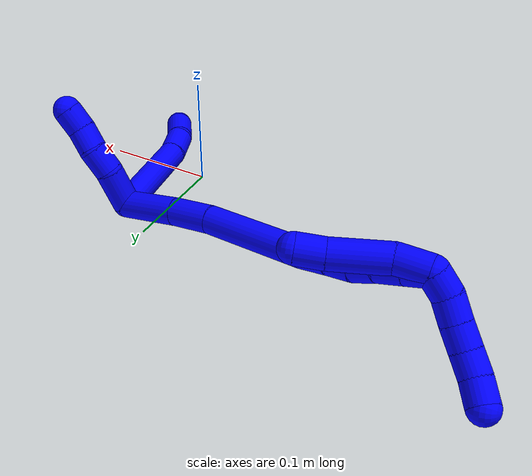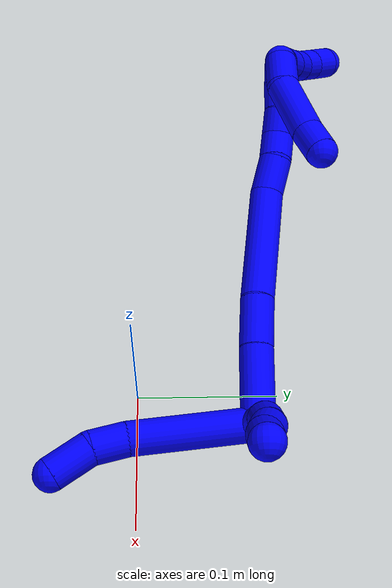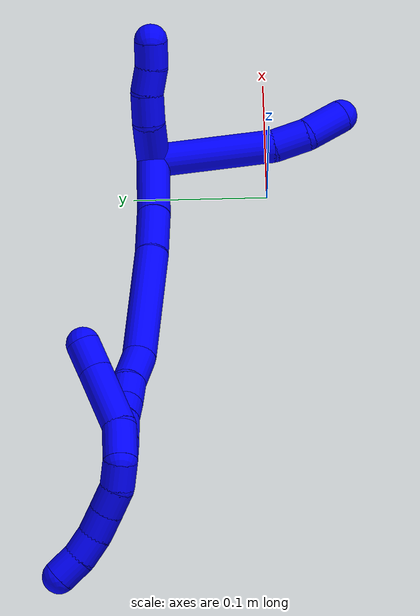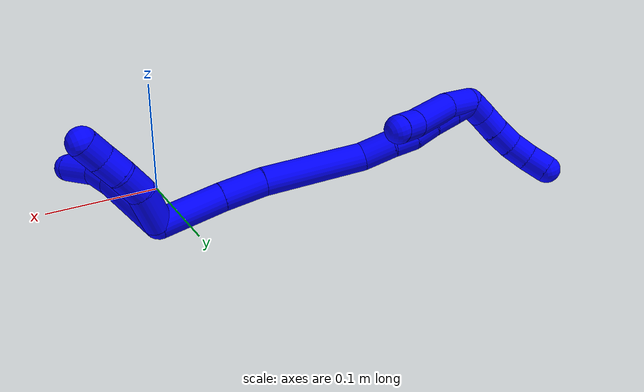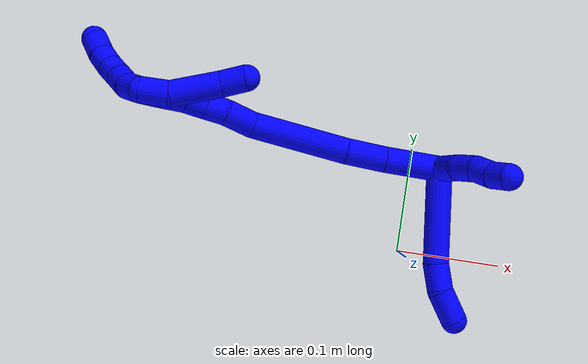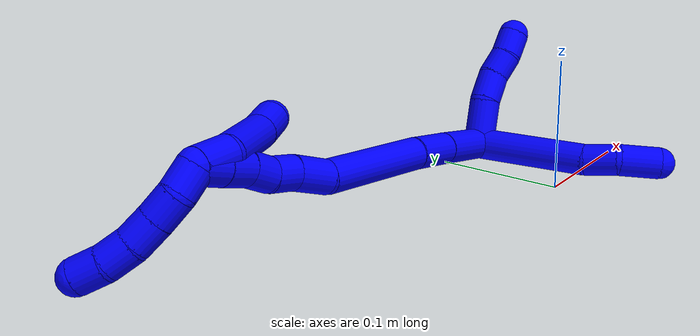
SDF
<sdf version="1.7">
 <world name="default">
  <model name="photoneo_s_sensor">
   <static>1</static>
   <pose>0 0 2 1.57079 1.57079 3.14159</pose>
   <link name="link">
    <inertial><mass>0.1</mass></inertial>
    <sensor name="sensor" type="depth">
     <update_rate>30</update_rate>
     <camera>
      <horizontal_fov>1.22</horizontal_fov>
      <image><width>1920</width><height>1200</height><format>B8G8R8</format></image>
      <clip><near>0.1</near><far>4</far></clip>
      <depth_camera><output>points</output></depth_camera>
     </camera>
     <plugin name="camera_plugin" filename="libgazebo_ros_depth_camera.so">
      <baseline>0.2</baseline>
      <alwaysOn>1</alwaysOn>
      <updateRate>0.0</updateRate>
      <cameraName>camera_ir</cameraName>
      <imageTopicName>/camera/color/image_raw</imageTopicName>
      <cameraInfoTopicName>/camera/color/camera_info</cameraInfoTopicName>
      <depthImageTopicName>/camera/depth/image_raw</depthImageTopicName>
      <depthImageCameraInfoTopicName>/camera/depth/camera_info</depthImageCameraInfoTopicName>
      <pointCloudTopicName>/camera/depth/points</pointCloudTopicName>
      <frameName>fr_optical</frameName>
      <pointCloudCutoff>0.1</pointCloudCutoff>
      <pointCloudCutoffMax>2.0</pointCloudCutoffMax>
      <distortionK1>0</distortionK1>
      <distortionK2>0</distortionK2>
      <distortionK3>0</distortionK3>
      <distortionT1>0</distortionT1>
      <distortionT2>0</distortionT2>
      <CxPrime>0</CxPrime>
      <Cx>0</Cx>
      <Cy>0</Cy>
      <focalLength>0</focalLength>
      <hackBaseline>0</hackBaseline>
     </plugin>
    </sensor>
   </link>
  </model>
  <model name="bin">
   <static>1</static>
   <link name="bottom">
    <collision name="collision-bottom">
     <pose>0 0 -0.01 0 -0 0</pose>
     <geometry><box><size>0.8 0.6 0.02</size></box></geometry>
     <surface>
      <friction><ode><mu>100</mu><mu2>100</mu2></ode></friction>
      <contact><collide_bitmask>65535</collide_bitmask></contact>
     </surface>
    </collision>
   </link>
   <link name="west_wall">
    <collision name="collision-west_wall">
     <pose>-0.41 0 0.1 0 -0 0</pose>
     <geometry><box><size>0.02 0.6 0.2</size></box></geometry>
     <surface>
      <friction><ode><mu>100</mu><mu2>100</mu2></ode></friction>
      <contact><collide_bitmask>65535</collide_bitmask></contact>
     </surface>
    </collision>
   </link>
   <link name="east_wall">
    <collision name="collision-east_wall">
     <pose>0.41 0 0.1 0 -0 0</pose>
     <geometry><box><size>0.02 0.6 0.2</size></box></geometry>
     <surface>
      <friction><ode><mu>100</mu><mu2>100</mu2></ode></friction>
      <contact><collide_bitmask>65535</collide_bitmask></contact>
     </surface>
    </collision>
   </link>
   <link name="south_wall">
    <collision name="collision-south_wall">
     <pose>0 -0.31 0.1 0 -0 0</pose>
     <geometry><box><size>0.8 0.02 0.2</size></box></geometry>
     <surface>
      <friction><ode><mu>100</mu><mu2>100</mu2></ode></friction>
      <contact><collide_bitmask>65535</collide_bitmask></contact>
     </surface>
    </collision>
   </link>
   <link name="north_wall">
    <collision name="collision-north_wall">
     <pose>0 0.31 0.1 0 -0 0</pose>
     <geometry><box><size>0.8 0.02 0.2</size></box></geometry>
     <surface>
      <friction><ode><mu>100</mu><mu2>100</mu2></ode></friction>
      <contact><collide_bitmask>65535</collide_bitmask></contact>
     </surface>
    </collision>
   </link>
  </model>
  <model name="1">
   <static>0</static>
   <link name="1">
    <collision name="collision-cylinder-e_1_2_8">
     <pose>0.026461 -0.037027 -0.004909 1.70261 0.616372 0.696981</pose>
     <geometry><cylinder><radius>0.0125</radius><length>0.091549</length></cylinder></geometry>
     <surface>
      <friction><ode><mu>1.16</mu><mu2>1.16</mu2><slip1>0</slip1><slip2>0</slip2></ode></friction>
      <contact><ode><kp>1e+06</kp><kd>1</kd><max_vel>0</max_vel><min_depth>0.001</min_depth></ode></contact>
     </surface>
    </collision>
    <visual name="visual-cylinder-e_1_2_8">
     <pose>0.026461 -0.037027 -0.004909 1.70261 0.616372 0.696981</pose>
     <geometry><cylinder><radius>0.0125</radius><length>0.091549</length></cylinder></geometry>
     <material><ambient>0 0 1 1</ambient></material>
    </visual>
    <collision name="collision-cylinder-e_2_8_9">
     <pose>0.061632 -0.083363 -0.0134 1.93809 0.717813 1.00001</pose>
     <geometry><cylinder><radius>0.0125</radius><length>0.026485</length></cylinder></geometry>
     <surface>
      <friction><ode><mu>1.16</mu><mu2>1.16</mu2><slip1>0</slip1><slip2>0</slip2></ode></friction>
      <contact><ode><kp>1e+06</kp><kd>1</kd><max_vel>0</max_vel><min_depth>0.001</min_depth></ode></contact>
     </surface>
    </collision>
    <visual name="visual-cylinder-e_2_8_9">
     <pose>0.061632 -0.083363 -0.0134 1.93809 0.717813 1.00001</pose>
     <geometry><cylinder><radius>0.0125</radius><length>0.026485</length></cylinder></geometry>
     <material><ambient>0 0 1 1</ambient></material>
    </visual>
    <collision name="collision-cylinder-e_3_9_6">
     <pose>0.077987 -0.103526 -0.025884 2.25773 0.498688 0.987476</pose>
     <geometry><cylinder><radius>0.0125</radius><length>0.031967</length></cylinder></geometry>
     <surface>
      <friction><ode><mu>1.16</mu><mu2>1.16</mu2><slip1>0</slip1><slip2>0</slip2></ode></friction>
      <contact><ode><kp>1e+06</kp><kd>1</kd><max_vel>0</max_vel><min_depth>0.001</min_depth></ode></contact>
     </surface>
    </collision>
    <visual name="visual-cylinder-e_3_9_6">
     <pose>0.077987 -0.103526 -0.025884 2.25773 0.498688 0.987476</pose>
     <geometry><cylinder><radius>0.0125</radius><length>0.031967</length></cylinder></geometry>
     <material><ambient>0 0 1 1</ambient></material>
    </visual>
    <collision name="collision-cylinder-e_1_2_10">
     <pose>0.013766 0.010976 -0.0036 -1.8877 0.872658 -1.14382</pose>
     <geometry><cylinder><radius>0.0125</radius><length>0.035941</length></cylinder></geometry>
     <surface>
      <friction><ode><mu>1.16</mu><mu2>1.16</mu2><slip1>0</slip1><slip2>0</slip2></ode></friction>
      <contact><ode><kp>1e+06</kp><kd>1</kd><max_vel>0</max_vel><min_depth>0.001</min_depth></ode></contact>
     </surface>
    </collision>
    <visual name="visual-cylinder-e_1_2_10">
     <pose>0.013766 0.010976 -0.0036 -1.8877 0.872658 -1.14382</pose>
     <geometry><cylinder><radius>0.0125</radius><length>0.035941</length></cylinder></geometry>
     <material><ambient>0 0 1 1</ambient></material>
    </visual>
    <collision name="collision-cylinder-e_2_10_11">
     <pose>0.03597 0.028078 -0.01259 -2.29244 0.802138 -1.50686</pose>
     <geometry><cylinder><radius>0.0125</radius><length>0.023476</length></cylinder></geometry>
     <surface>
      <friction><ode><mu>1.16</mu><mu2>1.16</mu2><slip1>0</slip1><slip2>0</slip2></ode></friction>
      <contact><ode><kp>1e+06</kp><kd>1</kd><max_vel>0</max_vel><min_depth>0.001</min_depth></ode></contact>
     </surface>
    </collision>
    <visual name="visual-cylinder-e_2_10_11">
     <pose>0.03597 0.028078 -0.01259 -2.29244 0.802138 -1.50686</pose>
     <geometry><cylinder><radius>0.0125</radius><length>0.023476</length></cylinder></geometry>
     <material><ambient>0 0 1 1</ambient></material>
    </visual>
    <collision name="collision-cylinder-e_3_11_12">
     <pose>0.05263 0.037373 -0.023142 -2.59093 0.935875 -2.12214</pose>
     <geometry><cylinder><radius>0.0125</radius><length>0.020426</length></cylinder></geometry>
     <surface>
      <friction><ode><mu>1.16</mu><mu2>1.16</mu2><slip1>0</slip1><slip2>0</slip2></ode></friction>
      <contact><ode><kp>1e+06</kp><kd>1</kd><max_vel>0</max_vel><min_depth>0.001</min_depth></ode></contact>
     </surface>
    </collision>
    <visual name="visual-cylinder-e_3_11_12">
     <pose>0.05263 0.037373 -0.023142 -2.59093 0.935875 -2.12214</pose>
     <geometry><cylinder><radius>0.0125</radius><length>0.020426</length></cylinder></geometry>
     <material><ambient>0 0 1 1</ambient></material>
    </visual>
    <collision name="collision-cylinder-e_4_12_5">
     <pose>0.068087 0.045539 -0.033233 -2.34931 0.800547 -1.58235</pose>
     <geometry><cylinder><radius>0.0125</radius><length>0.020158</length></cylinder></geometry>
     <surface>
      <friction><ode><mu>1.16</mu><mu2>1.16</mu2><slip1>0</slip1><slip2>0</slip2></ode></friction>
      <contact><ode><kp>1e+06</kp><kd>1</kd><max_vel>0</max_vel><min_depth>0.001</min_depth></ode></contact>
     </surface>
    </collision>
    <visual name="visual-cylinder-e_4_12_5">
     <pose>0.068087 0.045539 -0.033233 -2.34931 0.800547 -1.58235</pose>
     <geometry><cylinder><radius>0.0125</radius><length>0.020158</length></cylinder></geometry>
     <material><ambient>0 0 1 1</ambient></material>
    </visual>
    <collision name="collision-cylinder-e_1_2_13">
     <pose>0.000174 0.000601 0.027975 -0.021477 0.006202 -6.7e-05</pose>
     <geometry><cylinder><radius>0.0125</radius><length>0.055965</length></cylinder></geometry>
     <surface>
      <friction><ode><mu>1.16</mu><mu2>1.16</mu2><slip1>0</slip1><slip2>0</slip2></ode></friction>
      <contact><ode><kp>1e+06</kp><kd>1</kd><max_vel>0</max_vel><min_depth>0.001</min_depth></ode></contact>
     </surface>
    </collision>
    <visual name="visual-cylinder-e_1_2_13">
     <pose>0.000174 0.000601 0.027975 -0.021477 0.006202 -6.7e-05</pose>
     <geometry><cylinder><radius>0.0125</radius><length>0.055965</length></cylinder></geometry>
     <material><ambient>0 0 1 1</ambient></material>
    </visual>
    <collision name="collision-cylinder-e_2_13_14">
     <pose>-0.000499 0.001966 0.074976 -0.040153 -0.0444 0.000892</pose>
     <geometry><cylinder><radius>0.0125</radius><length>0.038118</length></cylinder></geometry>
     <surface>
      <friction><ode><mu>1.16</mu><mu2>1.16</mu2><slip1>0</slip1><slip2>0</slip2></ode></friction>
      <contact><ode><kp>1e+06</kp><kd>1</kd><max_vel>0</max_vel><min_depth>0.001</min_depth></ode></contact>
     </surface>
    </collision>
    <visual name="visual-cylinder-e_2_13_14">
     <pose>-0.000499 0.001966 0.074976 -0.040153 -0.0444 0.000892</pose>
     <geometry><cylinder><radius>0.0125</radius><length>0.038118</length></cylinder></geometry>
     <material><ambient>0 0 1 1</ambient></material>
    </visual>
    <collision name="collision-cylinder-e_3_14_15">
     <pose>-0.008195 0.004753 0.139647 -0.04427 -0.148808 0.003301</pose>
     <geometry><cylinder><radius>0.0125</radius><length>0.092403</length></cylinder></geometry>
     <surface>
      <friction><ode><mu>1.16</mu><mu2>1.16</mu2><slip1>0</slip1><slip2>0</slip2></ode></friction>
      <contact><ode><kp>1e+06</kp><kd>1</kd><max_vel>0</max_vel><min_depth>0.001</min_depth></ode></contact>
     </surface>
    </collision>
    <visual name="visual-cylinder-e_3_14_15">
     <pose>-0.008195 0.004753 0.139647 -0.04427 -0.148808 0.003301</pose>
     <geometry><cylinder><radius>0.0125</radius><length>0.092403</length></cylinder></geometry>
     <material><ambient>0 0 1 1</ambient></material>
    </visual>
    <collision name="collision-cylinder-e_4_15_16">
     <pose>-0.01514 0.011345 0.19915 -0.318613 -0.006564 0.001055</pose>
     <geometry><cylinder><radius>0.0125</radius><length>0.029181</length></cylinder></geometry>
     <surface>
      <friction><ode><mu>1.16</mu><mu2>1.16</mu2><slip1>0</slip1><slip2>0</slip2></ode></friction>
      <contact><ode><kp>1e+06</kp><kd>1</kd><max_vel>0</max_vel><min_depth>0.001</min_depth></ode></contact>
     </surface>
    </collision>
    <visual name="visual-cylinder-e_4_15_16">
     <pose>-0.01514 0.011345 0.19915 -0.318613 -0.006564 0.001055</pose>
     <geometry><cylinder><radius>0.0125</radius><length>0.029181</length></cylinder></geometry>
     <material><ambient>0 0 1 1</ambient></material>
    </visual>
    <collision name="collision-cylinder-e_5_16_17">
     <pose>-0.015875 0.017174 0.223287 -0.121772 -0.061598 0.003756</pose>
     <geometry><cylinder><radius>0.0125</radius><length>0.020756</length></cylinder></geometry>
     <surface>
      <friction><ode><mu>1.16</mu><mu2>1.16</mu2><slip1>0</slip1><slip2>0</slip2></ode></friction>
      <contact><ode><kp>1e+06</kp><kd>1</kd><max_vel>0</max_vel><min_depth>0.001</min_depth></ode></contact>
     </surface>
    </collision>
    <visual name="visual-cylinder-e_5_16_17">
     <pose>-0.015875 0.017174 0.223287 -0.121772 -0.061598 0.003756</pose>
     <geometry><cylinder><radius>0.0125</radius><length>0.020756</length></cylinder></geometry>
     <material><ambient>0 0 1 1</ambient></material>
    </visual>
    <collision name="collision-cylinder-e_6_17_18">
     <pose>-0.014685 0.021256 0.243317 -0.281942 0.178255 -0.025362</pose>
     <geometry><cylinder><radius>0.0125</radius><length>0.020625</length></cylinder></geometry>
     <surface>
      <friction><ode><mu>1.16</mu><mu2>1.16</mu2><slip1>0</slip1><slip2>0</slip2></ode></friction>
      <contact><ode><kp>1e+06</kp><kd>1</kd><max_vel>0</max_vel><min_depth>0.001</min_depth></ode></contact>
     </surface>
    </collision>
    <visual name="visual-cylinder-e_6_17_18">
     <pose>-0.014685 0.021256 0.243317 -0.281942 0.178255 -0.025362</pose>
     <geometry><cylinder><radius>0.0125</radius><length>0.020625</length></cylinder></geometry>
     <material><ambient>0 0 1 1</ambient></material>
    </visual>
    <collision name="collision-cylinder-e_7_18_19">
     <pose>-0.011796 0.025139 0.264133 -0.095469 0.09509 -0.004546</pose>
     <geometry><cylinder><radius>0.0125</radius><length>0.022336</length></cylinder></geometry>
     <surface>
      <friction><ode><mu>1.16</mu><mu2>1.16</mu2><slip1>0</slip1><slip2>0</slip2></ode></friction>
      <contact><ode><kp>1e+06</kp><kd>1</kd><max_vel>0</max_vel><min_depth>0.001</min_depth></ode></contact>
     </surface>
    </collision>
    <visual name="visual-cylinder-e_7_18_19">
     <pose>-0.011796 0.025139 0.264133 -0.095469 0.09509 -0.004546</pose>
     <geometry><cylinder><radius>0.0125</radius><length>0.022336</length></cylinder></geometry>
     <material><ambient>0 0 1 1</ambient></material>
    </visual>
    <collision name="collision-cylinder-e_8_19_1">
     <pose>-0.009708 0.027609 0.285358 -0.137914 0.099916 -0.006907</pose>
     <geometry><cylinder><radius>0.0125</radius><length>0.020615</length></cylinder></geometry>
     <surface>
      <friction><ode><mu>1.16</mu><mu2>1.16</mu2><slip1>0</slip1><slip2>0</slip2></ode></friction>
      <contact><ode><kp>1e+06</kp><kd>1</kd><max_vel>0</max_vel><min_depth>0.001</min_depth></ode></contact>
     </surface>
    </collision>
    <visual name="visual-cylinder-e_8_19_1">
     <pose>-0.009708 0.027609 0.285358 -0.137914 0.099916 -0.006907</pose>
     <geometry><cylinder><radius>0.0125</radius><length>0.020615</length></cylinder></geometry>
     <material><ambient>0 0 1 1</ambient></material>
    </visual>
    <collision name="collision-cylinder-e_1_1_20">
     <pose>-0.016314 0.025515 0.300942 0.573416 -0.868662 -0.271842</pose>
     <geometry><cylinder><radius>0.0125</radius><length>0.02</length></cylinder></geometry>
     <surface>
      <friction><ode><mu>1.16</mu><mu2>1.16</mu2><slip1>0</slip1><slip2>0</slip2></ode></friction>
      <contact><ode><kp>1e+06</kp><kd>1</kd><max_vel>0</max_vel><min_depth>0.001</min_depth></ode></contact>
     </surface>
    </collision>
    <visual name="visual-cylinder-e_1_1_20">
     <pose>-0.016314 0.025515 0.300942 0.573416 -0.868662 -0.271842</pose>
     <geometry><cylinder><radius>0.0125</radius><length>0.02</length></cylinder></geometry>
     <material><ambient>0 0 1 1</ambient></material>
    </visual>
    <collision name="collision-cylinder-e_2_20_21">
     <pose>-0.033009 0.020884 0.310447 0.269577 -1.13378 -0.17223</pose>
     <geometry><cylinder><radius>0.0125</radius><length>0.02</length></cylinder></geometry>
     <surface>
      <friction><ode><mu>1.16</mu><mu2>1.16</mu2><slip1>0</slip1><slip2>0</slip2></ode></friction>
      <contact><ode><kp>1e+06</kp><kd>1</kd><max_vel>0</max_vel><min_depth>0.001</min_depth></ode></contact>
     </surface>
    </collision>
    <visual name="visual-cylinder-e_2_20_21">
     <pose>-0.033009 0.020884 0.310447 0.269577 -1.13378 -0.17223</pose>
     <geometry><cylinder><radius>0.0125</radius><length>0.02</length></cylinder></geometry>
     <material><ambient>0 0 1 1</ambient></material>
    </visual>
    <collision name="collision-cylinder-e_3_21_22">
     <pose>-0.05093 0.018993 0.3191 0.165616 -1.08872 -0.100404</pose>
     <geometry><cylinder><radius>0.0125</radius><length>0.02</length></cylinder></geometry>
     <surface>
      <friction><ode><mu>1.16</mu><mu2>1.16</mu2><slip1>0</slip1><slip2>0</slip2></ode></friction>
      <contact><ode><kp>1e+06</kp><kd>1</kd><max_vel>0</max_vel><min_depth>0.001</min_depth></ode></contact>
     </surface>
    </collision>
    <visual name="visual-cylinder-e_3_21_22">
     <pose>-0.05093 0.018993 0.3191 0.165616 -1.08872 -0.100404</pose>
     <geometry><cylinder><radius>0.0125</radius><length>0.02</length></cylinder></geometry>
     <material><ambient>0 0 1 1</ambient></material>
    </visual>
    <collision name="collision-cylinder-e_4_22_23">
     <pose>-0.068375 0.019352 0.328677 -0.220788 -1.03227 0.12563</pose>
     <geometry><cylinder><radius>0.0125</radius><length>0.02</length></cylinder></geometry>
     <surface>
      <friction><ode><mu>1.16</mu><mu2>1.16</mu2><slip1>0</slip1><slip2>0</slip2></ode></friction>
      <contact><ode><kp>1e+06</kp><kd>1</kd><max_vel>0</max_vel><min_depth>0.001</min_depth></ode></contact>
     </surface>
    </collision>
    <visual name="visual-cylinder-e_4_22_23">
     <pose>-0.068375 0.019352 0.328677 -0.220788 -1.03227 0.12563</pose>
     <geometry><cylinder><radius>0.0125</radius><length>0.02</length></cylinder></geometry>
     <material><ambient>0 0 1 1</ambient></material>
    </visual>
    <collision name="collision-cylinder-e_5_23_4">
     <pose>-0.085345 0.023652 0.338106 -0.622657 -0.994644 0.345868</pose>
     <geometry><cylinder><radius>0.0125</radius><length>0.02</length></cylinder></geometry>
     <surface>
      <friction><ode><mu>1.16</mu><mu2>1.16</mu2><slip1>0</slip1><slip2>0</slip2></ode></friction>
      <contact><ode><kp>1e+06</kp><kd>1</kd><max_vel>0</max_vel><min_depth>0.001</min_depth></ode></contact>
     </surface>
    </collision>
    <visual name="visual-cylinder-e_5_23_4">
     <pose>-0.085345 0.023652 0.338106 -0.622657 -0.994644 0.345868</pose>
     <geometry><cylinder><radius>0.0125</radius><length>0.02</length></cylinder></geometry>
     <material><ambient>0 0 1 1</ambient></material>
    </visual>
    <collision name="collision-cylinder-e_1_1_24">
     <pose>-0.006587 0.030545 0.281926 -3.02978 0.151828 -1.87294</pose>
     <geometry><cylinder><radius>0.0125</radius><length>0.02767</length></cylinder></geometry>
     <surface>
      <friction><ode><mu>1.16</mu><mu2>1.16</mu2><slip1>0</slip1><slip2>0</slip2></ode></friction>
      <contact><ode><kp>1e+06</kp><kd>1</kd><max_vel>0</max_vel><min_depth>0.001</min_depth></ode></contact>
     </surface>
    </collision>
    <visual name="visual-cylinder-e_1_1_24">
     <pose>-0.006587 0.030545 0.281926 -3.02978 0.151828 -1.87294</pose>
     <geometry><cylinder><radius>0.0125</radius><length>0.02767</length></cylinder></geometry>
     <material><ambient>0 0 1 1</ambient></material>
    </visual>
    <collision name="collision-cylinder-e_2_24_25">
     <pose>-0.00635 0.040621 0.245595 -2.78194 -0.076229 0.413535</pose>
     <geometry><cylinder><radius>0.0125</radius><length>0.048732</length></cylinder></geometry>
     <surface>
      <friction><ode><mu>1.16</mu><mu2>1.16</mu2><slip1>0</slip1><slip2>0</slip2></ode></friction>
      <contact><ode><kp>1e+06</kp><kd>1</kd><max_vel>0</max_vel><min_depth>0.001</min_depth></ode></contact>
     </surface>
    </collision>
    <visual name="visual-cylinder-e_2_24_25">
     <pose>-0.00635 0.040621 0.245595 -2.78194 -0.076229 0.413535</pose>
     <geometry><cylinder><radius>0.0125</radius><length>0.048732</length></cylinder></geometry>
     <material><ambient>0 0 1 1</ambient></material>
    </visual>
    <collision name="collision-cylinder-e_3_25_3">
     <pose>-0.007919 0.054544 0.212353 -2.66873 0.024267 -0.100637</pose>
     <geometry><cylinder><radius>0.0125</radius><length>0.023598</length></cylinder></geometry>
     <surface>
      <friction><ode><mu>1.16</mu><mu2>1.16</mu2><slip1>0</slip1><slip2>0</slip2></ode></friction>
      <contact><ode><kp>1e+06</kp><kd>1</kd><max_vel>0</max_vel><min_depth>0.001</min_depth></ode></contact>
     </surface>
    </collision>
    <visual name="visual-cylinder-e_3_25_3">
     <pose>-0.007919 0.054544 0.212353 -2.66873 0.024267 -0.100637</pose>
     <geometry><cylinder><radius>0.0125</radius><length>0.023598</length></cylinder></geometry>
     <material><ambient>0 0 1 1</ambient></material>
    </visual>
    <collision name="collision-sphere-3">
     <pose>-0.007633 0.059916 0.201852 0 -0 0</pose>
     <geometry><sphere><radius>0.0125</radius></sphere></geometry>
     <surface>
      <friction><ode><mu>1.16</mu><mu2>1.16</mu2><slip1>0</slip1><slip2>0</slip2></ode></friction>
      <contact><ode><kp>1e+06</kp><kd>1</kd><max_vel>0</max_vel><min_depth>0.001</min_depth></ode></contact>
     </surface>
    </collision>
    <visual name="visual-sphere-3">
     <pose>-0.007633 0.059916 0.201852 0 -0 0</pose>
     <geometry><sphere><radius>0.0125</radius></sphere></geometry>
     <material><ambient>0 0 1 1</ambient></material>
    </visual>
    <collision name="collision-sphere-25">
     <pose>-0.008206 0.049172 0.222854 0 -0 0</pose>
     <geometry><sphere><radius>0.0125</radius></sphere></geometry>
     <surface>
      <friction><ode><mu>1.16</mu><mu2>1.16</mu2><slip1>0</slip1><slip2>0</slip2></ode></friction>
      <contact><ode><kp>1e+06</kp><kd>1</kd><max_vel>0</max_vel><min_depth>0.001</min_depth></ode></contact>
     </surface>
    </collision>
    <visual name="visual-sphere-25">
     <pose>-0.008206 0.049172 0.222854 0 -0 0</pose>
     <geometry><sphere><radius>0.0125</radius></sphere></geometry>
     <material><ambient>0 0 1 1</ambient></material>
    </visual>
    <collision name="collision-sphere-24">
     <pose>-0.004495 0.032071 0.268336 0 -0 0</pose>
     <geometry><sphere><radius>0.0125</radius></sphere></geometry>
     <surface>
      <friction><ode><mu>1.16</mu><mu2>1.16</mu2><slip1>0</slip1><slip2>0</slip2></ode></friction>
      <contact><ode><kp>1e+06</kp><kd>1</kd><max_vel>0</max_vel><min_depth>0.001</min_depth></ode></contact>
     </surface>
    </collision>
    <visual name="visual-sphere-24">
     <pose>-0.004495 0.032071 0.268336 0 -0 0</pose>
     <geometry><sphere><radius>0.0125</radius></sphere></geometry>
     <material><ambient>0 0 1 1</ambient></material>
    </visual>
    <collision name="collision-sphere-4">
     <pose>-0.093731 0.026829 0.342532 0 -0 0</pose>
     <geometry><sphere><radius>0.0125</radius></sphere></geometry>
     <surface>
      <friction><ode><mu>1.16</mu><mu2>1.16</mu2><slip1>0</slip1><slip2>0</slip2></ode></friction>
      <contact><ode><kp>1e+06</kp><kd>1</kd><max_vel>0</max_vel><min_depth>0.001</min_depth></ode></contact>
     </surface>
    </collision>
    <visual name="visual-sphere-4">
     <pose>-0.093731 0.026829 0.342532 0 -0 0</pose>
     <geometry><sphere><radius>0.0125</radius></sphere></geometry>
     <material><ambient>0 0 1 1</ambient></material>
    </visual>
    <collision name="collision-sphere-23">
     <pose>-0.076959 0.020475 0.333681 0 -0 0</pose>
     <geometry><sphere><radius>0.0125</radius></sphere></geometry>
     <surface>
      <friction><ode><mu>1.16</mu><mu2>1.16</mu2><slip1>0</slip1><slip2>0</slip2></ode></friction>
      <contact><ode><kp>1e+06</kp><kd>1</kd><max_vel>0</max_vel><min_depth>0.001</min_depth></ode></contact>
     </surface>
    </collision>
    <visual name="visual-sphere-23">
     <pose>-0.076959 0.020475 0.333681 0 -0 0</pose>
     <geometry><sphere><radius>0.0125</radius></sphere></geometry>
     <material><ambient>0 0 1 1</ambient></material>
    </visual>
    <collision name="collision-sphere-22">
     <pose>-0.05979 0.018229 0.323672 0 -0 0</pose>
     <geometry><sphere><radius>0.0125</radius></sphere></geometry>
     <surface>
      <friction><ode><mu>1.16</mu><mu2>1.16</mu2><slip1>0</slip1><slip2>0</slip2></ode></friction>
      <contact><ode><kp>1e+06</kp><kd>1</kd><max_vel>0</max_vel><min_depth>0.001</min_depth></ode></contact>
     </surface>
    </collision>
    <visual name="visual-sphere-22">
     <pose>-0.05979 0.018229 0.323672 0 -0 0</pose>
     <geometry><sphere><radius>0.0125</radius></sphere></geometry>
     <material><ambient>0 0 1 1</ambient></material>
    </visual>
    <collision name="collision-sphere-21">
     <pose>-0.042069 0.019757 0.314527 0 -0 0</pose>
     <geometry><sphere><radius>0.0125</radius></sphere></geometry>
     <surface>
      <friction><ode><mu>1.16</mu><mu2>1.16</mu2><slip1>0</slip1><slip2>0</slip2></ode></friction>
      <contact><ode><kp>1e+06</kp><kd>1</kd><max_vel>0</max_vel><min_depth>0.001</min_depth></ode></contact>
     </surface>
    </collision>
    <visual name="visual-sphere-21">
     <pose>-0.042069 0.019757 0.314527 0 -0 0</pose>
     <geometry><sphere><radius>0.0125</radius></sphere></geometry>
     <material><ambient>0 0 1 1</ambient></material>
    </visual>
    <collision name="collision-sphere-20">
     <pose>-0.023949 0.022012 0.306368 0 -0 0</pose>
     <geometry><sphere><radius>0.0125</radius></sphere></geometry>
     <surface>
      <friction><ode><mu>1.16</mu><mu2>1.16</mu2><slip1>0</slip1><slip2>0</slip2></ode></friction>
      <contact><ode><kp>1e+06</kp><kd>1</kd><max_vel>0</max_vel><min_depth>0.001</min_depth></ode></contact>
     </surface>
    </collision>
    <visual name="visual-sphere-20">
     <pose>-0.023949 0.022012 0.306368 0 -0 0</pose>
     <geometry><sphere><radius>0.0125</radius></sphere></geometry>
     <material><ambient>0 0 1 1</ambient></material>
    </visual>
    <collision name="collision-sphere-11">
     <pose>0.044407 0.034204 -0.01798 0 -0 0</pose>
     <geometry><sphere><radius>0.0125</radius></sphere></geometry>
     <surface>
      <friction><ode><mu>1.16</mu><mu2>1.16</mu2><slip1>0</slip1><slip2>0</slip2></ode></friction>
      <contact><ode><kp>1e+06</kp><kd>1</kd><max_vel>0</max_vel><min_depth>0.001</min_depth></ode></contact>
     </surface>
    </collision>
    <visual name="visual-sphere-11">
     <pose>0.044407 0.034204 -0.01798 0 -0 0</pose>
     <geometry><sphere><radius>0.0125</radius></sphere></geometry>
     <material><ambient>0 0 1 1</ambient></material>
    </visual>
    <collision name="collision-sphere-10">
     <pose>0.027532 0.021952 -0.007199 0 -0 0</pose>
     <geometry><sphere><radius>0.0125</radius></sphere></geometry>
     <surface>
      <friction><ode><mu>1.16</mu><mu2>1.16</mu2><slip1>0</slip1><slip2>0</slip2></ode></friction>
      <contact><ode><kp>1e+06</kp><kd>1</kd><max_vel>0</max_vel><min_depth>0.001</min_depth></ode></contact>
     </surface>
    </collision>
    <visual name="visual-sphere-10">
     <pose>0.027532 0.021952 -0.007199 0 -0 0</pose>
     <geometry><sphere><radius>0.0125</radius></sphere></geometry>
     <material><ambient>0 0 1 1</ambient></material>
    </visual>
    <collision name="collision-sphere-6">
     <pose>0.085631 -0.114379 -0.034785 0 -0 0</pose>
     <geometry><sphere><radius>0.0125</radius></sphere></geometry>
     <surface>
      <friction><ode><mu>1.16</mu><mu2>1.16</mu2><slip1>0</slip1><slip2>0</slip2></ode></friction>
      <contact><ode><kp>1e+06</kp><kd>1</kd><max_vel>0</max_vel><min_depth>0.001</min_depth></ode></contact>
     </surface>
    </collision>
    <visual name="visual-sphere-6">
     <pose>0.085631 -0.114379 -0.034785 0 -0 0</pose>
     <geometry><sphere><radius>0.0125</radius></sphere></geometry>
     <material><ambient>0 0 1 1</ambient></material>
    </visual>
    <collision name="collision-sphere-9">
     <pose>0.070342 -0.092673 -0.016982 0 -0 0</pose>
     <geometry><sphere><radius>0.0125</radius></sphere></geometry>
     <surface>
      <friction><ode><mu>1.16</mu><mu2>1.16</mu2><slip1>0</slip1><slip2>0</slip2></ode></friction>
      <contact><ode><kp>1e+06</kp><kd>1</kd><max_vel>0</max_vel><min_depth>0.001</min_depth></ode></contact>
     </surface>
    </collision>
    <visual name="visual-sphere-9">
     <pose>0.070342 -0.092673 -0.016982 0 -0 0</pose>
     <geometry><sphere><radius>0.0125</radius></sphere></geometry>
     <material><ambient>0 0 1 1</ambient></material>
    </visual>
    <collision name="collision-sphere-2">
     <geometry><sphere><radius>0.0125</radius></sphere></geometry>
     <surface>
      <friction><ode><mu>1.16</mu><mu2>1.16</mu2><slip1>0</slip1><slip2>0</slip2></ode></friction>
      <contact><ode><kp>1e+06</kp><kd>1</kd><max_vel>0</max_vel><min_depth>0.001</min_depth></ode></contact>
     </surface>
    </collision>
    <visual name="visual-sphere-2">
     <geometry><sphere><radius>0.0125</radius></sphere></geometry>
     <material><ambient>0 0 1 1</ambient></material>
    </visual>
    <collision name="collision-sphere-19">
     <pose>-0.010736 0.026199 0.2752 0 -0 0</pose>
     <geometry><sphere><radius>0.0125</radius></sphere></geometry>
     <surface>
      <friction><ode><mu>1.16</mu><mu2>1.16</mu2><slip1>0</slip1><slip2>0</slip2></ode></friction>
      <contact><ode><kp>1e+06</kp><kd>1</kd><max_vel>0</max_vel><min_depth>0.001</min_depth></ode></contact>
     </surface>
    </collision>
    <visual name="visual-sphere-19">
     <pose>-0.010736 0.026199 0.2752 0 -0 0</pose>
     <geometry><sphere><radius>0.0125</radius></sphere></geometry>
     <material><ambient>0 0 1 1</ambient></material>
    </visual>
    <collision name="collision-sphere-8">
     <pose>0.052922 -0.074054 -0.009818 0 -0 0</pose>
     <geometry><sphere><radius>0.0125</radius></sphere></geometry>
     <surface>
      <friction><ode><mu>1.16</mu><mu2>1.16</mu2><slip1>0</slip1><slip2>0</slip2></ode></friction>
      <contact><ode><kp>1e+06</kp><kd>1</kd><max_vel>0</max_vel><min_depth>0.001</min_depth></ode></contact>
     </surface>
    </collision>
    <visual name="visual-sphere-8">
     <pose>0.052922 -0.074054 -0.009818 0 -0 0</pose>
     <geometry><sphere><radius>0.0125</radius></sphere></geometry>
     <material><ambient>0 0 1 1</ambient></material>
    </visual>
    <collision name="collision-sphere-12">
     <pose>0.060853 0.040543 -0.028304 0 -0 0</pose>
     <geometry><sphere><radius>0.0125</radius></sphere></geometry>
     <surface>
      <friction><ode><mu>1.16</mu><mu2>1.16</mu2><slip1>0</slip1><slip2>0</slip2></ode></friction>
      <contact><ode><kp>1e+06</kp><kd>1</kd><max_vel>0</max_vel><min_depth>0.001</min_depth></ode></contact>
     </surface>
    </collision>
    <visual name="visual-sphere-12">
     <pose>0.060853 0.040543 -0.028304 0 -0 0</pose>
     <geometry><sphere><radius>0.0125</radius></sphere></geometry>
     <material><ambient>0 0 1 1</ambient></material>
    </visual>
    <collision name="collision-sphere-5">
     <pose>0.075321 0.050536 -0.038161 0 -0 0</pose>
     <geometry><sphere><radius>0.0125</radius></sphere></geometry>
     <surface>
      <friction><ode><mu>1.16</mu><mu2>1.16</mu2><slip1>0</slip1><slip2>0</slip2></ode></friction>
      <contact><ode><kp>1e+06</kp><kd>1</kd><max_vel>0</max_vel><min_depth>0.001</min_depth></ode></contact>
     </surface>
    </collision>
    <visual name="visual-sphere-5">
     <pose>0.075321 0.050536 -0.038161 0 -0 0</pose>
     <geometry><sphere><radius>0.0125</radius></sphere></geometry>
     <material><ambient>0 0 1 1</ambient></material>
    </visual>
    <collision name="collision-sphere-13">
     <pose>0.000347 0.001202 0.055951 0 -0 0</pose>
     <geometry><sphere><radius>0.0125</radius></sphere></geometry>
     <surface>
      <friction><ode><mu>1.16</mu><mu2>1.16</mu2><slip1>0</slip1><slip2>0</slip2></ode></friction>
      <contact><ode><kp>1e+06</kp><kd>1</kd><max_vel>0</max_vel><min_depth>0.001</min_depth></ode></contact>
     </surface>
    </collision>
    <visual name="visual-sphere-13">
     <pose>0.000347 0.001202 0.055951 0 -0 0</pose>
     <geometry><sphere><radius>0.0125</radius></sphere></geometry>
     <material><ambient>0 0 1 1</ambient></material>
    </visual>
    <collision name="collision-sphere-14">
     <pose>-0.001345 0.002731 0.094001 0 -0 0</pose>
     <geometry><sphere><radius>0.0125</radius></sphere></geometry>
     <surface>
      <friction><ode><mu>1.16</mu><mu2>1.16</mu2><slip1>0</slip1><slip2>0</slip2></ode></friction>
      <contact><ode><kp>1e+06</kp><kd>1</kd><max_vel>0</max_vel><min_depth>0.001</min_depth></ode></contact>
     </surface>
    </collision>
    <visual name="visual-sphere-14">
     <pose>-0.001345 0.002731 0.094001 0 -0 0</pose>
     <geometry><sphere><radius>0.0125</radius></sphere></geometry>
     <material><ambient>0 0 1 1</ambient></material>
    </visual>
    <collision name="collision-sphere-15">
     <pose>-0.015044 0.006775 0.185294 0 -0 0</pose>
     <geometry><sphere><radius>0.0125</radius></sphere></geometry>
     <surface>
      <friction><ode><mu>1.16</mu><mu2>1.16</mu2><slip1>0</slip1><slip2>0</slip2></ode></friction>
      <contact><ode><kp>1e+06</kp><kd>1</kd><max_vel>0</max_vel><min_depth>0.001</min_depth></ode></contact>
     </surface>
    </collision>
    <visual name="visual-sphere-15">
     <pose>-0.015044 0.006775 0.185294 0 -0 0</pose>
     <geometry><sphere><radius>0.0125</radius></sphere></geometry>
     <material><ambient>0 0 1 1</ambient></material>
    </visual>
    <collision name="collision-sphere-16">
     <pose>-0.015236 0.015916 0.213006 0 -0 0</pose>
     <geometry><sphere><radius>0.0125</radius></sphere></geometry>
     <surface>
      <friction><ode><mu>1.16</mu><mu2>1.16</mu2><slip1>0</slip1><slip2>0</slip2></ode></friction>
      <contact><ode><kp>1e+06</kp><kd>1</kd><max_vel>0</max_vel><min_depth>0.001</min_depth></ode></contact>
     </surface>
    </collision>
    <visual name="visual-sphere-16">
     <pose>-0.015236 0.015916 0.213006 0 -0 0</pose>
     <geometry><sphere><radius>0.0125</radius></sphere></geometry>
     <material><ambient>0 0 1 1</ambient></material>
    </visual>
    <collision name="collision-sphere-17">
     <pose>-0.016514 0.018432 0.233569 0 -0 0</pose>
     <geometry><sphere><radius>0.0125</radius></sphere></geometry>
     <surface>
      <friction><ode><mu>1.16</mu><mu2>1.16</mu2><slip1>0</slip1><slip2>0</slip2></ode></friction>
      <contact><ode><kp>1e+06</kp><kd>1</kd><max_vel>0</max_vel><min_depth>0.001</min_depth></ode></contact>
     </surface>
    </collision>
    <visual name="visual-sphere-17">
     <pose>-0.016514 0.018432 0.233569 0 -0 0</pose>
     <geometry><sphere><radius>0.0125</radius></sphere></geometry>
     <material><ambient>0 0 1 1</ambient></material>
    </visual>
    <collision name="collision-sphere-18">
     <pose>-0.012857 0.02408 0.253066 0 -0 0</pose>
     <geometry><sphere><radius>0.0125</radius></sphere></geometry>
     <surface>
      <friction><ode><mu>1.16</mu><mu2>1.16</mu2><slip1>0</slip1><slip2>0</slip2></ode></friction>
      <contact><ode><kp>1e+06</kp><kd>1</kd><max_vel>0</max_vel><min_depth>0.001</min_depth></ode></contact>
     </surface>
    </collision>
    <visual name="visual-sphere-18">
     <pose>-0.012857 0.02408 0.253066 0 -0 0</pose>
     <geometry><sphere><radius>0.0125</radius></sphere></geometry>
     <material><ambient>0 0 1 1</ambient></material>
    </visual>
    <collision name="collision-sphere-1">
     <pose>-0.00868 0.029019 0.295517 0 -0 0</pose>
     <geometry><sphere><radius>0.0125</radius></sphere></geometry>
     <surface>
      <friction><ode><mu>1.16</mu><mu2>1.16</mu2><slip1>0</slip1><slip2>0</slip2></ode></friction>
      <contact><ode><kp>1e+06</kp><kd>1</kd><max_vel>0</max_vel><min_depth>0.001</min_depth></ode></contact>
     </surface>
    </collision>
    <visual name="visual-sphere-1">
     <pose>-0.00868 0.029019 0.295517 0 -0 0</pose>
     <geometry><sphere><radius>0.0125</radius></sphere></geometry>
     <material><ambient>0 0 1 1</ambient></material>
    </visual>
    <inertial>
     <pose>0.003029 0.003883 0.130801 0 -0 0</pose>
     <mass>0.75</mass>
     <inertia>
      <ixx>0.000204</ixx>
      <ixy>0</ixy>
      <ixz>0</ixz>
      <iyy>0.000157</iyy>
      <iyz>0</iyz>
      <izz>2.3e-05</izz>
     </inertia>
    </inertial>
   </link>
   <pose>0.027929 0.084816 0.011588 1.25263 -0.956243 -1.30685</pose>
  </model>
 </world>
</sdf>
